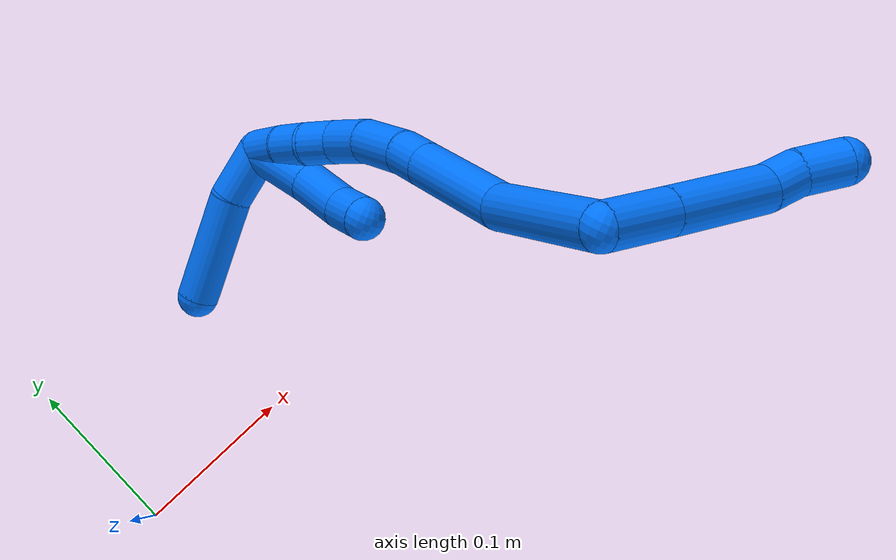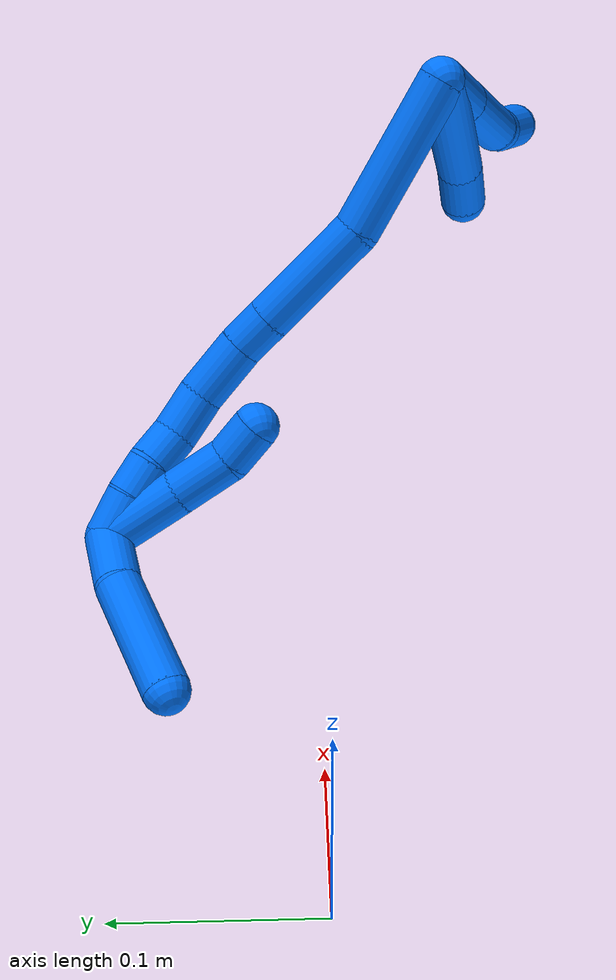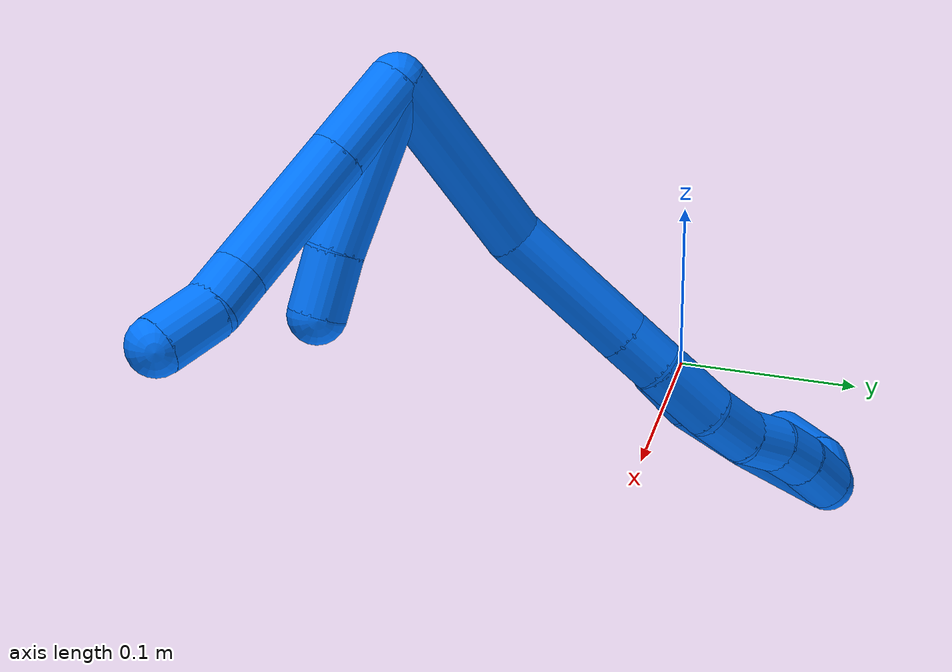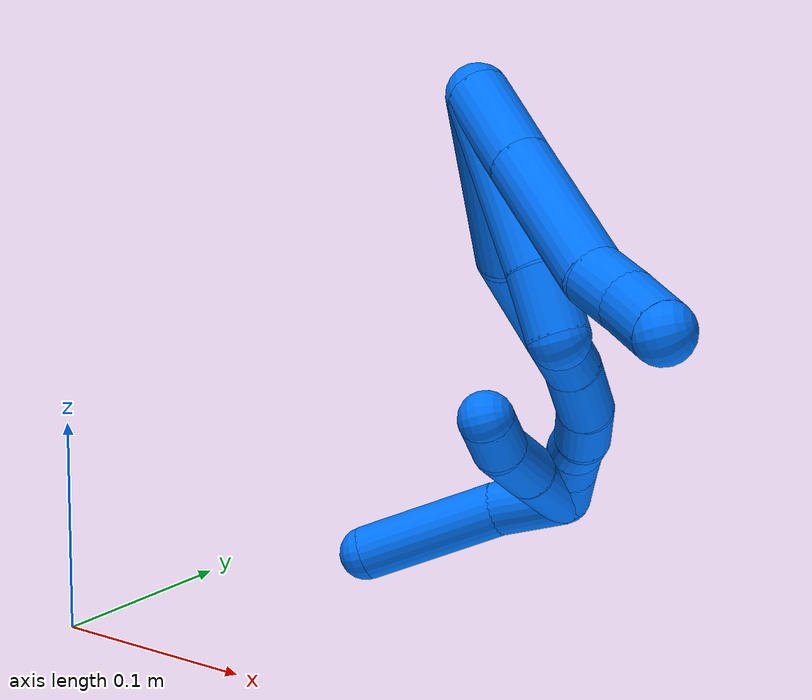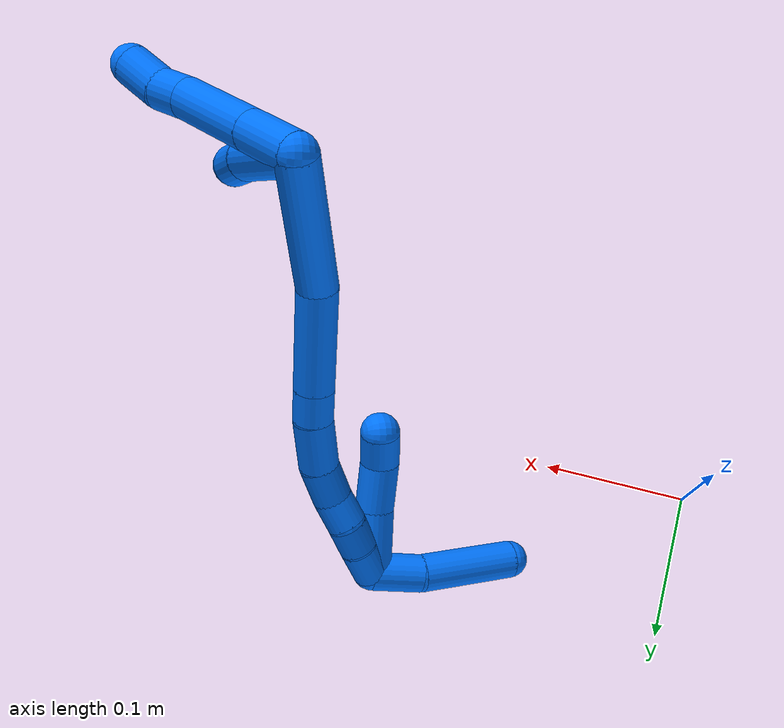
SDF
<sdf version="1.7">
 <world name="default">
  <model name="14">
   <static>0</static>
   <link name="14">
    <collision name="collision-cylinder-e_1_2_8">
     <pose>0.017024 -0.00723 0.007709 0.753326 1.01521 0.433123</pose>
     <geometry><cylinder><radius>0.0125</radius><length>0.040075</length></cylinder></geometry>
     <surface>
      <friction><ode><mu>1.16</mu><mu2>1.16</mu2><slip1>0</slip1><slip2>0</slip2></ode></friction>
      <contact><ode><kp>1e+06</kp><kd>1</kd><max_vel>0</max_vel><min_depth>0.001</min_depth></ode></contact>
     </surface>
    </collision>
    <visual name="visual-cylinder-e_1_2_8">
     <pose>0.017024 -0.00723 0.007709 0.753326 1.01521 0.433123</pose>
     <geometry><cylinder><radius>0.0125</radius><length>0.040075</length></cylinder></geometry>
     <material><ambient>0 0.462745 1 1</ambient></material>
    </visual>
    <collision name="collision-cylinder-e_2_8_9">
     <pose>0.060677 -0.02582 0.027877 0.739305 1.00634 0.420245</pose>
     <geometry><cylinder><radius>0.0125</radius><length>0.063037</length></cylinder></geometry>
     <surface>
      <friction><ode><mu>1.16</mu><mu2>1.16</mu2><slip1>0</slip1><slip2>0</slip2></ode></friction>
      <contact><ode><kp>1e+06</kp><kd>1</kd><max_vel>0</max_vel><min_depth>0.001</min_depth></ode></contact>
     </surface>
    </collision>
    <visual name="visual-cylinder-e_2_8_9">
     <pose>0.060677 -0.02582 0.027877 0.739305 1.00634 0.420245</pose>
     <geometry><cylinder><radius>0.0125</radius><length>0.063037</length></cylinder></geometry>
     <material><ambient>0 0.462745 1 1</ambient></material>
    </visual>
    <collision name="collision-cylinder-e_3_9_10">
     <pose>0.094509 -0.040526 0.046597 0.490754 0.792671 0.208832</pose>
     <geometry><cylinder><radius>0.0125</radius><length>0.020225</length></cylinder></geometry>
     <surface>
      <friction><ode><mu>1.16</mu><mu2>1.16</mu2><slip1>0</slip1><slip2>0</slip2></ode></friction>
      <contact><ode><kp>1e+06</kp><kd>1</kd><max_vel>0</max_vel><min_depth>0.001</min_depth></ode></contact>
     </surface>
    </collision>
    <visual name="visual-cylinder-e_3_9_10">
     <pose>0.094509 -0.040526 0.046597 0.490754 0.792671 0.208832</pose>
     <geometry><cylinder><radius>0.0125</radius><length>0.020225</length></cylinder></geometry>
     <material><ambient>0 0.462745 1 1</ambient></material>
    </visual>
    <collision name="collision-cylinder-e_4_10_6">
     <pose>0.110043 -0.051502 0.059935 0.823058 0.675068 0.303994</pose>
     <geometry><cylinder><radius>0.0125</radius><length>0.026662</length></cylinder></geometry>
     <surface>
      <friction><ode><mu>1.16</mu><mu2>1.16</mu2><slip1>0</slip1><slip2>0</slip2></ode></friction>
      <contact><ode><kp>1e+06</kp><kd>1</kd><max_vel>0</max_vel><min_depth>0.001</min_depth></ode></contact>
     </surface>
    </collision>
    <visual name="visual-cylinder-e_4_10_6">
     <pose>0.110043 -0.051502 0.059935 0.823058 0.675068 0.303994</pose>
     <geometry><cylinder><radius>0.0125</radius><length>0.026662</length></cylinder></geometry>
     <material><ambient>0 0.462745 1 1</ambient></material>
    </visual>
    <collision name="collision-cylinder-e_1_2_11">
     <pose>0.036028 -0.001319 0.005012 0.257344 1.42793 0.223282</pose>
     <geometry><cylinder><radius>0.0125</radius><length>0.072798</length></cylinder></geometry>
     <surface>
      <friction><ode><mu>1.16</mu><mu2>1.16</mu2><slip1>0</slip1><slip2>0</slip2></ode></friction>
      <contact><ode><kp>1e+06</kp><kd>1</kd><max_vel>0</max_vel><min_depth>0.001</min_depth></ode></contact>
     </surface>
    </collision>
    <visual name="visual-cylinder-e_1_2_11">
     <pose>0.036028 -0.001319 0.005012 0.257344 1.42793 0.223282</pose>
     <geometry><cylinder><radius>0.0125</radius><length>0.072798</length></cylinder></geometry>
     <material><ambient>0 0.462745 1 1</ambient></material>
    </visual>
    <collision name="collision-cylinder-e_2_11_5">
     <pose>0.085595 -0.001888 0.011086 -0.614624 1.475 -0.561434</pose>
     <geometry><cylinder><radius>0.0125</radius><length>0.027202</length></cylinder></geometry>
     <surface>
      <friction><ode><mu>1.16</mu><mu2>1.16</mu2><slip1>0</slip1><slip2>0</slip2></ode></friction>
      <contact><ode><kp>1e+06</kp><kd>1</kd><max_vel>0</max_vel><min_depth>0.001</min_depth></ode></contact>
     </surface>
    </collision>
    <visual name="visual-cylinder-e_2_11_5">
     <pose>0.085595 -0.001888 0.011086 -0.614624 1.475 -0.561434</pose>
     <geometry><cylinder><radius>0.0125</radius><length>0.027202</length></cylinder></geometry>
     <material><ambient>0 0.462745 1 1</ambient></material>
    </visual>
    <collision name="collision-cylinder-e_1_2_12">
     <pose>0.023816 0.034812 -0.01158 -1.89193 0.575782 -0.779176</pose>
     <geometry><cylinder><radius>0.0125</radius><length>0.087479</length></cylinder></geometry>
     <surface>
      <friction><ode><mu>1.16</mu><mu2>1.16</mu2><slip1>0</slip1><slip2>0</slip2></ode></friction>
      <contact><ode><kp>1e+06</kp><kd>1</kd><max_vel>0</max_vel><min_depth>0.001</min_depth></ode></contact>
     </surface>
    </collision>
    <visual name="visual-cylinder-e_1_2_12">
     <pose>0.023816 0.034812 -0.01158 -1.89193 0.575782 -0.779176</pose>
     <geometry><cylinder><radius>0.0125</radius><length>0.087479</length></cylinder></geometry>
     <material><ambient>0 0.462745 1 1</ambient></material>
    </visual>
    <collision name="collision-cylinder-e_2_12_13">
     <pose>0.060922 0.099748 -0.025387 -1.64458 0.414512 -0.44528</pose>
     <geometry><cylinder><radius>0.0125</radius><length>0.066002</length></cylinder></geometry>
     <surface>
      <friction><ode><mu>1.16</mu><mu2>1.16</mu2><slip1>0</slip1><slip2>0</slip2></ode></friction>
      <contact><ode><kp>1e+06</kp><kd>1</kd><max_vel>0</max_vel><min_depth>0.001</min_depth></ode></contact>
     </surface>
    </collision>
    <visual name="visual-cylinder-e_2_12_13">
     <pose>0.060922 0.099748 -0.025387 -1.64458 0.414512 -0.44528</pose>
     <geometry><cylinder><radius>0.0125</radius><length>0.066002</length></cylinder></geometry>
     <material><ambient>0 0.462745 1 1</ambient></material>
    </visual>
    <collision name="collision-cylinder-e_3_13_14">
     <pose>0.078467 0.139616 -0.028318 -1.64292 0.410611 -0.440398</pose>
     <geometry><cylinder><radius>0.0125</radius><length>0.02131</length></cylinder></geometry>
     <surface>
      <friction><ode><mu>1.16</mu><mu2>1.16</mu2><slip1>0</slip1><slip2>0</slip2></ode></friction>
      <contact><ode><kp>1e+06</kp><kd>1</kd><max_vel>0</max_vel><min_depth>0.001</min_depth></ode></contact>
     </surface>
    </collision>
    <visual name="visual-cylinder-e_3_13_14">
     <pose>0.078467 0.139616 -0.028318 -1.64292 0.410611 -0.440398</pose>
     <geometry><cylinder><radius>0.0125</radius><length>0.02131</length></cylinder></geometry>
     <material><ambient>0 0.462745 1 1</ambient></material>
    </visual>
    <collision name="collision-cylinder-e_4_14_15">
     <pose>0.089457 0.164665 -0.032467 -1.79221 0.405637 -0.503267</pose>
     <geometry><cylinder><radius>0.0125</radius><length>0.034146</length></cylinder></geometry>
     <surface>
      <friction><ode><mu>1.16</mu><mu2>1.16</mu2><slip1>0</slip1><slip2>0</slip2></ode></friction>
      <contact><ode><kp>1e+06</kp><kd>1</kd><max_vel>0</max_vel><min_depth>0.001</min_depth></ode></contact>
     </surface>
    </collision>
    <visual name="visual-cylinder-e_4_14_15">
     <pose>0.089457 0.164665 -0.032467 -1.79221 0.405637 -0.503267</pose>
     <geometry><cylinder><radius>0.0125</radius><length>0.034146</length></cylinder></geometry>
     <material><ambient>0 0.462745 1 1</ambient></material>
    </visual>
    <collision name="collision-cylinder-e_5_15_16">
     <pose>0.100211 0.1911 -0.041145 -2.01029 0.315694 -0.491315</pose>
     <geometry><cylinder><radius>0.0125</radius><length>0.025877</length></cylinder></geometry>
     <surface>
      <friction><ode><mu>1.16</mu><mu2>1.16</mu2><slip1>0</slip1><slip2>0</slip2></ode></friction>
      <contact><ode><kp>1e+06</kp><kd>1</kd><max_vel>0</max_vel><min_depth>0.001</min_depth></ode></contact>
     </surface>
    </collision>
    <visual name="visual-cylinder-e_5_15_16">
     <pose>0.100211 0.1911 -0.041145 -2.01029 0.315694 -0.491315</pose>
     <geometry><cylinder><radius>0.0125</radius><length>0.025877</length></cylinder></geometry>
     <material><ambient>0 0.462745 1 1</ambient></material>
    </visual>
    <collision name="collision-cylinder-e_6_16_17">
     <pose>0.104807 0.211218 -0.051186 -2.06201 0.056731 -0.094642</pose>
     <geometry><cylinder><radius>0.0125</radius><length>0.020421</length></cylinder></geometry>
     <surface>
      <friction><ode><mu>1.16</mu><mu2>1.16</mu2><slip1>0</slip1><slip2>0</slip2></ode></friction>
      <contact><ode><kp>1e+06</kp><kd>1</kd><max_vel>0</max_vel><min_depth>0.001</min_depth></ode></contact>
     </surface>
    </collision>
    <visual name="visual-cylinder-e_6_16_17">
     <pose>0.104807 0.211218 -0.051186 -2.06201 0.056731 -0.094642</pose>
     <geometry><cylinder><radius>0.0125</radius><length>0.020421</length></cylinder></geometry>
     <material><ambient>0 0.462745 1 1</ambient></material>
    </visual>
    <collision name="collision-cylinder-e_7_17_18">
     <pose>0.107948 0.22871 -0.060623 -2.06926 0.258646 -0.430909</pose>
     <geometry><cylinder><radius>0.0125</radius><length>0.020029</length></cylinder></geometry>
     <surface>
      <friction><ode><mu>1.16</mu><mu2>1.16</mu2><slip1>0</slip1><slip2>0</slip2></ode></friction>
      <contact><ode><kp>1e+06</kp><kd>1</kd><max_vel>0</max_vel><min_depth>0.001</min_depth></ode></contact>
     </surface>
    </collision>
    <visual name="visual-cylinder-e_7_17_18">
     <pose>0.107948 0.22871 -0.060623 -2.06926 0.258646 -0.430909</pose>
     <geometry><cylinder><radius>0.0125</radius><length>0.020029</length></cylinder></geometry>
     <material><ambient>0 0.462745 1 1</ambient></material>
    </visual>
    <collision name="collision-cylinder-e_8_18_1">
     <pose>0.115067 0.247077 -0.07116 -2.11052 0.377414 -0.650153</pose>
     <geometry><cylinder><radius>0.0125</radius><length>0.024736</length></cylinder></geometry>
     <surface>
      <friction><ode><mu>1.16</mu><mu2>1.16</mu2><slip1>0</slip1><slip2>0</slip2></ode></friction>
      <contact><ode><kp>1e+06</kp><kd>1</kd><max_vel>0</max_vel><min_depth>0.001</min_depth></ode></contact>
     </surface>
    </collision>
    <visual name="visual-cylinder-e_8_18_1">
     <pose>0.115067 0.247077 -0.07116 -2.11052 0.377414 -0.650153</pose>
     <geometry><cylinder><radius>0.0125</radius><length>0.024736</length></cylinder></geometry>
     <material><ambient>0 0.462745 1 1</ambient></material>
    </visual>
    <collision name="collision-cylinder-e_1_1_19">
     <pose>0.115627 0.234958 -0.076894 1.56284 -0.179894 -0.178475</pose>
     <geometry><cylinder><radius>0.0125</radius><length>0.044686</length></cylinder></geometry>
     <surface>
      <friction><ode><mu>1.16</mu><mu2>1.16</mu2><slip1>0</slip1><slip2>0</slip2></ode></friction>
      <contact><ode><kp>1e+06</kp><kd>1</kd><max_vel>0</max_vel><min_depth>0.001</min_depth></ode></contact>
     </surface>
    </collision>
    <visual name="visual-cylinder-e_1_1_19">
     <pose>0.115627 0.234958 -0.076894 1.56284 -0.179894 -0.178475</pose>
     <geometry><cylinder><radius>0.0125</radius><length>0.044686</length></cylinder></geometry>
     <material><ambient>0 0.462745 1 1</ambient></material>
    </visual>
    <collision name="collision-cylinder-e_2_19_20">
     <pose>0.1076 0.197295 -0.077316 1.60886 -0.251339 -0.260985</pose>
     <geometry><cylinder><radius>0.0125</radius><length>0.032404</length></cylinder></geometry>
     <surface>
      <friction><ode><mu>1.16</mu><mu2>1.16</mu2><slip1>0</slip1><slip2>0</slip2></ode></friction>
      <contact><ode><kp>1e+06</kp><kd>1</kd><max_vel>0</max_vel><min_depth>0.001</min_depth></ode></contact>
     </surface>
    </collision>
    <visual name="visual-cylinder-e_2_19_20">
     <pose>0.1076 0.197295 -0.077316 1.60886 -0.251339 -0.260985</pose>
     <geometry><cylinder><radius>0.0125</radius><length>0.032404</length></cylinder></geometry>
     <material><ambient>0 0.462745 1 1</ambient></material>
    </visual>
    <collision name="collision-cylinder-e_3_20_4">
     <pose>0.098342 0.171541 -0.076355 1.41727 -0.473983 -0.40829</pose>
     <geometry><cylinder><radius>0.0125</radius><length>0.02291</length></cylinder></geometry>
     <surface>
      <friction><ode><mu>1.16</mu><mu2>1.16</mu2><slip1>0</slip1><slip2>0</slip2></ode></friction>
      <contact><ode><kp>1e+06</kp><kd>1</kd><max_vel>0</max_vel><min_depth>0.001</min_depth></ode></contact>
     </surface>
    </collision>
    <visual name="visual-cylinder-e_3_20_4">
     <pose>0.098342 0.171541 -0.076355 1.41727 -0.473983 -0.40829</pose>
     <geometry><cylinder><radius>0.0125</radius><length>0.02291</length></cylinder></geometry>
     <material><ambient>0 0.462745 1 1</ambient></material>
    </visual>
    <collision name="collision-cylinder-e_1_1_21">
     <pose>0.118342 0.259015 -0.093568 -3.01647 -0.076962 1.10213</pose>
     <geometry><cylinder><radius>0.0125</radius><length>0.033357</length></cylinder></geometry>
     <surface>
      <friction><ode><mu>1.16</mu><mu2>1.16</mu2><slip1>0</slip1><slip2>0</slip2></ode></friction>
      <contact><ode><kp>1e+06</kp><kd>1</kd><max_vel>0</max_vel><min_depth>0.001</min_depth></ode></contact>
     </surface>
    </collision>
    <visual name="visual-cylinder-e_1_1_21">
     <pose>0.118342 0.259015 -0.093568 -3.01647 -0.076962 1.10213</pose>
     <geometry><cylinder><radius>0.0125</radius><length>0.033357</length></cylinder></geometry>
     <material><ambient>0 0.462745 1 1</ambient></material>
    </visual>
    <collision name="collision-cylinder-e_2_21_3">
     <pose>0.119873 0.260123 -0.143255 3.11244 0.08454 2.4777</pose>
     <geometry><cylinder><radius>0.0125</radius><length>0.066643</length></cylinder></geometry>
     <surface>
      <friction><ode><mu>1.16</mu><mu2>1.16</mu2><slip1>0</slip1><slip2>0</slip2></ode></friction>
      <contact><ode><kp>1e+06</kp><kd>1</kd><max_vel>0</max_vel><min_depth>0.001</min_depth></ode></contact>
     </surface>
    </collision>
    <visual name="visual-cylinder-e_2_21_3">
     <pose>0.119873 0.260123 -0.143255 3.11244 0.08454 2.4777</pose>
     <geometry><cylinder><radius>0.0125</radius><length>0.066643</length></cylinder></geometry>
     <material><ambient>0 0.462745 1 1</ambient></material>
    </visual>
    <collision name="collision-sphere-3">
     <pose>0.122687 0.259155 -0.176444 0 -0 0</pose>
     <geometry><sphere><radius>0.0125</radius></sphere></geometry>
     <surface>
      <friction><ode><mu>1.16</mu><mu2>1.16</mu2><slip1>0</slip1><slip2>0</slip2></ode></friction>
      <contact><ode><kp>1e+06</kp><kd>1</kd><max_vel>0</max_vel><min_depth>0.001</min_depth></ode></contact>
     </surface>
    </collision>
    <visual name="visual-sphere-3">
     <pose>0.122687 0.259155 -0.176444 0 -0 0</pose>
     <geometry><sphere><radius>0.0125</radius></sphere></geometry>
     <material><ambient>0 0.462745 1 1</ambient></material>
    </visual>
    <collision name="collision-sphere-21">
     <pose>0.11706 0.26109 -0.110067 0 -0 0</pose>
     <geometry><sphere><radius>0.0125</radius></sphere></geometry>
     <surface>
      <friction><ode><mu>1.16</mu><mu2>1.16</mu2><slip1>0</slip1><slip2>0</slip2></ode></friction>
      <contact><ode><kp>1e+06</kp><kd>1</kd><max_vel>0</max_vel><min_depth>0.001</min_depth></ode></contact>
     </surface>
    </collision>
    <visual name="visual-sphere-21">
     <pose>0.11706 0.26109 -0.110067 0 -0 0</pose>
     <geometry><sphere><radius>0.0125</radius></sphere></geometry>
     <material><ambient>0 0.462745 1 1</ambient></material>
    </visual>
    <collision name="collision-sphere-4">
     <pose>0.093113 0.161469 -0.074796 0 -0 0</pose>
     <geometry><sphere><radius>0.0125</radius></sphere></geometry>
     <surface>
      <friction><ode><mu>1.16</mu><mu2>1.16</mu2><slip1>0</slip1><slip2>0</slip2></ode></friction>
      <contact><ode><kp>1e+06</kp><kd>1</kd><max_vel>0</max_vel><min_depth>0.001</min_depth></ode></contact>
     </surface>
    </collision>
    <visual name="visual-sphere-4">
     <pose>0.093113 0.161469 -0.074796 0 -0 0</pose>
     <geometry><sphere><radius>0.0125</radius></sphere></geometry>
     <material><ambient>0 0.462745 1 1</ambient></material>
    </visual>
    <collision name="collision-sphere-20">
     <pose>0.10357 0.181614 -0.077913 0 -0 0</pose>
     <geometry><sphere><radius>0.0125</radius></sphere></geometry>
     <surface>
      <friction><ode><mu>1.16</mu><mu2>1.16</mu2><slip1>0</slip1><slip2>0</slip2></ode></friction>
      <contact><ode><kp>1e+06</kp><kd>1</kd><max_vel>0</max_vel><min_depth>0.001</min_depth></ode></contact>
     </surface>
    </collision>
    <visual name="visual-sphere-20">
     <pose>0.10357 0.181614 -0.077913 0 -0 0</pose>
     <geometry><sphere><radius>0.0125</radius></sphere></geometry>
     <material><ambient>0 0.462745 1 1</ambient></material>
    </visual>
    <collision name="collision-sphere-11">
     <pose>0.072056 -0.002638 0.010024 0 -0 0</pose>
     <geometry><sphere><radius>0.0125</radius></sphere></geometry>
     <surface>
      <friction><ode><mu>1.16</mu><mu2>1.16</mu2><slip1>0</slip1><slip2>0</slip2></ode></friction>
      <contact><ode><kp>1e+06</kp><kd>1</kd><max_vel>0</max_vel><min_depth>0.001</min_depth></ode></contact>
     </surface>
    </collision>
    <visual name="visual-sphere-11">
     <pose>0.072056 -0.002638 0.010024 0 -0 0</pose>
     <geometry><sphere><radius>0.0125</radius></sphere></geometry>
     <material><ambient>0 0.462745 1 1</ambient></material>
    </visual>
    <collision name="collision-sphere-6">
     <pose>0.118374 -0.059133 0.067011 0 -0 0</pose>
     <geometry><sphere><radius>0.0125</radius></sphere></geometry>
     <surface>
      <friction><ode><mu>1.16</mu><mu2>1.16</mu2><slip1>0</slip1><slip2>0</slip2></ode></friction>
      <contact><ode><kp>1e+06</kp><kd>1</kd><max_vel>0</max_vel><min_depth>0.001</min_depth></ode></contact>
     </surface>
    </collision>
    <visual name="visual-sphere-6">
     <pose>0.118374 -0.059133 0.067011 0 -0 0</pose>
     <geometry><sphere><radius>0.0125</radius></sphere></geometry>
     <material><ambient>0 0.462745 1 1</ambient></material>
    </visual>
    <collision name="collision-sphere-10">
     <pose>0.101712 -0.043871 0.052858 0 -0 0</pose>
     <geometry><sphere><radius>0.0125</radius></sphere></geometry>
     <surface>
      <friction><ode><mu>1.16</mu><mu2>1.16</mu2><slip1>0</slip1><slip2>0</slip2></ode></friction>
      <contact><ode><kp>1e+06</kp><kd>1</kd><max_vel>0</max_vel><min_depth>0.001</min_depth></ode></contact>
     </surface>
    </collision>
    <visual name="visual-sphere-10">
     <pose>0.101712 -0.043871 0.052858 0 -0 0</pose>
     <geometry><sphere><radius>0.0125</radius></sphere></geometry>
     <material><ambient>0 0.462745 1 1</ambient></material>
    </visual>
    <collision name="collision-sphere-9">
     <pose>0.087307 -0.03718 0.040336 0 -0 0</pose>
     <geometry><sphere><radius>0.0125</radius></sphere></geometry>
     <surface>
      <friction><ode><mu>1.16</mu><mu2>1.16</mu2><slip1>0</slip1><slip2>0</slip2></ode></friction>
      <contact><ode><kp>1e+06</kp><kd>1</kd><max_vel>0</max_vel><min_depth>0.001</min_depth></ode></contact>
     </surface>
    </collision>
    <visual name="visual-sphere-9">
     <pose>0.087307 -0.03718 0.040336 0 -0 0</pose>
     <geometry><sphere><radius>0.0125</radius></sphere></geometry>
     <material><ambient>0 0.462745 1 1</ambient></material>
    </visual>
    <collision name="collision-sphere-2">
     <geometry><sphere><radius>0.0125</radius></sphere></geometry>
     <surface>
      <friction><ode><mu>1.16</mu><mu2>1.16</mu2><slip1>0</slip1><slip2>0</slip2></ode></friction>
      <contact><ode><kp>1e+06</kp><kd>1</kd><max_vel>0</max_vel><min_depth>0.001</min_depth></ode></contact>
     </surface>
    </collision>
    <visual name="visual-sphere-2">
     <geometry><sphere><radius>0.0125</radius></sphere></geometry>
     <material><ambient>0 0.462745 1 1</ambient></material>
    </visual>
    <collision name="collision-sphere-19">
     <pose>0.111629 0.212977 -0.076719 0 -0 0</pose>
     <geometry><sphere><radius>0.0125</radius></sphere></geometry>
     <surface>
      <friction><ode><mu>1.16</mu><mu2>1.16</mu2><slip1>0</slip1><slip2>0</slip2></ode></friction>
      <contact><ode><kp>1e+06</kp><kd>1</kd><max_vel>0</max_vel><min_depth>0.001</min_depth></ode></contact>
     </surface>
    </collision>
    <visual name="visual-sphere-19">
     <pose>0.111629 0.212977 -0.076719 0 -0 0</pose>
     <geometry><sphere><radius>0.0125</radius></sphere></geometry>
     <material><ambient>0 0.462745 1 1</ambient></material>
    </visual>
    <collision name="collision-sphere-8">
     <pose>0.034048 -0.014459 0.015418 0 -0 0</pose>
     <geometry><sphere><radius>0.0125</radius></sphere></geometry>
     <surface>
      <friction><ode><mu>1.16</mu><mu2>1.16</mu2><slip1>0</slip1><slip2>0</slip2></ode></friction>
      <contact><ode><kp>1e+06</kp><kd>1</kd><max_vel>0</max_vel><min_depth>0.001</min_depth></ode></contact>
     </surface>
    </collision>
    <visual name="visual-sphere-8">
     <pose>0.034048 -0.014459 0.015418 0 -0 0</pose>
     <geometry><sphere><radius>0.0125</radius></sphere></geometry>
     <material><ambient>0 0.462745 1 1</ambient></material>
    </visual>
    <collision name="collision-sphere-5">
     <pose>0.099134 -0.001138 0.012149 0 -0 0</pose>
     <geometry><sphere><radius>0.0125</radius></sphere></geometry>
     <surface>
      <friction><ode><mu>1.16</mu><mu2>1.16</mu2><slip1>0</slip1><slip2>0</slip2></ode></friction>
      <contact><ode><kp>1e+06</kp><kd>1</kd><max_vel>0</max_vel><min_depth>0.001</min_depth></ode></contact>
     </surface>
    </collision>
    <visual name="visual-sphere-5">
     <pose>0.099134 -0.001138 0.012149 0 -0 0</pose>
     <geometry><sphere><radius>0.0125</radius></sphere></geometry>
     <material><ambient>0 0.462745 1 1</ambient></material>
    </visual>
    <collision name="collision-sphere-12">
     <pose>0.047632 0.069623 -0.02316 0 -0 0</pose>
     <geometry><sphere><radius>0.0125</radius></sphere></geometry>
     <surface>
      <friction><ode><mu>1.16</mu><mu2>1.16</mu2><slip1>0</slip1><slip2>0</slip2></ode></friction>
      <contact><ode><kp>1e+06</kp><kd>1</kd><max_vel>0</max_vel><min_depth>0.001</min_depth></ode></contact>
     </surface>
    </collision>
    <visual name="visual-sphere-12">
     <pose>0.047632 0.069623 -0.02316 0 -0 0</pose>
     <geometry><sphere><radius>0.0125</radius></sphere></geometry>
     <material><ambient>0 0.462745 1 1</ambient></material>
    </visual>
    <collision name="collision-sphere-13">
     <pose>0.074213 0.129872 -0.027614 0 -0 0</pose>
     <geometry><sphere><radius>0.0125</radius></sphere></geometry>
     <surface>
      <friction><ode><mu>1.16</mu><mu2>1.16</mu2><slip1>0</slip1><slip2>0</slip2></ode></friction>
      <contact><ode><kp>1e+06</kp><kd>1</kd><max_vel>0</max_vel><min_depth>0.001</min_depth></ode></contact>
     </surface>
    </collision>
    <visual name="visual-sphere-13">
     <pose>0.074213 0.129872 -0.027614 0 -0 0</pose>
     <geometry><sphere><radius>0.0125</radius></sphere></geometry>
     <material><ambient>0 0.462745 1 1</ambient></material>
    </visual>
    <collision name="collision-sphere-14">
     <pose>0.08272 0.14936 -0.029022 0 -0 0</pose>
     <geometry><sphere><radius>0.0125</radius></sphere></geometry>
     <surface>
      <friction><ode><mu>1.16</mu><mu2>1.16</mu2><slip1>0</slip1><slip2>0</slip2></ode></friction>
      <contact><ode><kp>1e+06</kp><kd>1</kd><max_vel>0</max_vel><min_depth>0.001</min_depth></ode></contact>
     </surface>
    </collision>
    <visual name="visual-sphere-14">
     <pose>0.08272 0.14936 -0.029022 0 -0 0</pose>
     <geometry><sphere><radius>0.0125</radius></sphere></geometry>
     <material><ambient>0 0.462745 1 1</ambient></material>
    </visual>
    <collision name="collision-sphere-15">
     <pose>0.096194 0.179969 -0.035912 0 -0 0</pose>
     <geometry><sphere><radius>0.0125</radius></sphere></geometry>
     <surface>
      <friction><ode><mu>1.16</mu><mu2>1.16</mu2><slip1>0</slip1><slip2>0</slip2></ode></friction>
      <contact><ode><kp>1e+06</kp><kd>1</kd><max_vel>0</max_vel><min_depth>0.001</min_depth></ode></contact>
     </surface>
    </collision>
    <visual name="visual-sphere-15">
     <pose>0.096194 0.179969 -0.035912 0 -0 0</pose>
     <geometry><sphere><radius>0.0125</radius></sphere></geometry>
     <material><ambient>0 0.462745 1 1</ambient></material>
    </visual>
    <collision name="collision-sphere-16">
     <pose>0.104228 0.20223 -0.046378 0 -0 0</pose>
     <geometry><sphere><radius>0.0125</radius></sphere></geometry>
     <surface>
      <friction><ode><mu>1.16</mu><mu2>1.16</mu2><slip1>0</slip1><slip2>0</slip2></ode></friction>
      <contact><ode><kp>1e+06</kp><kd>1</kd><max_vel>0</max_vel><min_depth>0.001</min_depth></ode></contact>
     </surface>
    </collision>
    <visual name="visual-sphere-16">
     <pose>0.104228 0.20223 -0.046378 0 -0 0</pose>
     <geometry><sphere><radius>0.0125</radius></sphere></geometry>
     <material><ambient>0 0.462745 1 1</ambient></material>
    </visual>
    <collision name="collision-sphere-17">
     <pose>0.105386 0.220207 -0.055995 0 -0 0</pose>
     <geometry><sphere><radius>0.0125</radius></sphere></geometry>
     <surface>
      <friction><ode><mu>1.16</mu><mu2>1.16</mu2><slip1>0</slip1><slip2>0</slip2></ode></friction>
      <contact><ode><kp>1e+06</kp><kd>1</kd><max_vel>0</max_vel><min_depth>0.001</min_depth></ode></contact>
     </surface>
    </collision>
    <visual name="visual-sphere-17">
     <pose>0.105386 0.220207 -0.055995 0 -0 0</pose>
     <geometry><sphere><radius>0.0125</radius></sphere></geometry>
     <material><ambient>0 0.462745 1 1</ambient></material>
    </visual>
    <collision name="collision-sphere-18">
     <pose>0.110509 0.237214 -0.065252 0 -0 0</pose>
     <geometry><sphere><radius>0.0125</radius></sphere></geometry>
     <surface>
      <friction><ode><mu>1.16</mu><mu2>1.16</mu2><slip1>0</slip1><slip2>0</slip2></ode></friction>
      <contact><ode><kp>1e+06</kp><kd>1</kd><max_vel>0</max_vel><min_depth>0.001</min_depth></ode></contact>
     </surface>
    </collision>
    <visual name="visual-sphere-18">
     <pose>0.110509 0.237214 -0.065252 0 -0 0</pose>
     <geometry><sphere><radius>0.0125</radius></sphere></geometry>
     <material><ambient>0 0.462745 1 1</ambient></material>
    </visual>
    <collision name="collision-sphere-1">
     <pose>0.119624 0.25694 -0.077069 0 -0 0</pose>
     <geometry><sphere><radius>0.0125</radius></sphere></geometry>
     <surface>
      <friction><ode><mu>1.16</mu><mu2>1.16</mu2><slip1>0</slip1><slip2>0</slip2></ode></friction>
      <contact><ode><kp>1e+06</kp><kd>1</kd><max_vel>0</max_vel><min_depth>0.001</min_depth></ode></contact>
     </surface>
    </collision>
    <visual name="visual-sphere-1">
     <pose>0.119624 0.25694 -0.077069 0 -0 0</pose>
     <geometry><sphere><radius>0.0125</radius></sphere></geometry>
     <material><ambient>0 0.462745 1 1</ambient></material>
    </visual>
    <inertial>
     <pose>0.076959 0.107624 -0.032761 0 -0 0</pose>
     <mass>0.75</mass>
     <inertia>
      <ixx>8.6e-05</ixx>
      <ixy>0</ixy>
      <ixz>0</ixz>
      <iyy>8.1e-05</iyy>
      <iyz>0</iyz>
      <izz>-0.000173</izz>
     </inertia>
    </inertial>
   </link>
   <pose>0.276886 -0.065189 0.297706 -0.831856 1.06441 -0.514828</pose>
  </model>
 </world>
</sdf>
